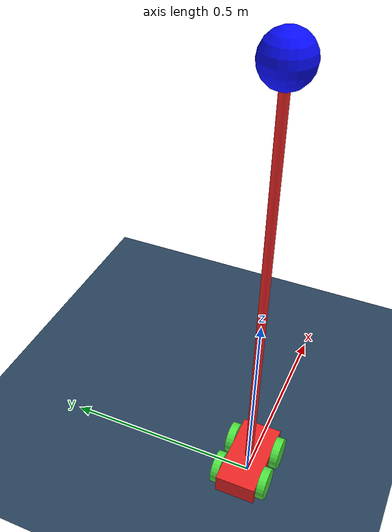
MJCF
<mujoco>
  <compiler inertiafromgeom="true" autolimits="true"/>

  <asset>
    <texture name="grid" type="2d" builtin="checker" width="512" height="512" rgb1=".1 .2 .3" rgb2=".2 .3 .4"/>
    <material name="grid" texture="grid" texrepeat="1 1" texuniform="true" reflectance=".2"/>
  </asset>

  <default>
    <joint damping="0.04" actuatorfrcrange="-5 5"/>

    <default class="chassis">
      <geom density="1426"/>
    </default>

    <default class="wheel">
      <geom type="cylinder" size="0.04 0.01" rgba="0.306 0.898 0.251 1" density="1426"/>
    </default>
  </default>

  <worldbody>
    <camera name="fixed" pos="0 -1.5 0.7" xyaxes="1 0 0 0 1 2"/>
    <geom type="plane" size="3 3 .01" material="grid"/>

    <body name="car" pos="0 0 0.04">
      <freejoint name="car_joint"/>

      <light name="top light" pos="0 0 2" mode="trackcom" diffuse=".4 .4 .4"/>

      <geom name="chasis" type="box" size="0.1 0.05 0.025" rgba="0.917 0.145 0.145 1" class="chassis"/>

      <!-- The physical structure of the wheels and pole  -->
      <body name="right_front_wheel" pos="0.05 -0.06 0" zaxis="0 1 0">
        <joint name="right_front"/>
        <geom class="wheel"/>
      </body>
      <body name="left_front_wheel" pos="0.05 0.06 0" zaxis="0 1 0">
        <joint name="left_front"/>
        <geom class="wheel"/>
      </body>
      <body name="right_rear_wheel" pos="-0.05 -0.06 0" zaxis="0 1 0">
        <joint name="right_rear"/>
        <geom class="wheel"/>
      </body>
      <body name="left_rear_wheel" pos="-0.05 0.06 0" zaxis="0 1 0">
        <joint name="left_rear"/>
        <geom class="wheel"/>
      </body>

      <site name="ds_left_site" type="box" size="0.005 0.005 0.005" rgba="0.184 0.596 0.847 1"
            pos="0.1 0.03 0" xyaxes="0.955 0.296 0 -0.296 0.955 0"/>
      <site name="ds_right_site" type="box" size="0.005 0.005 0.005" rgba="0.184 0.596 0.847 1"
            pos="0.1 -0.03 0" xyaxes="0.955 -0.296 0 0.296 0.955 0"/>

      <body name="pole_body" pos="0 0 0.025">
        <joint name="pole_joint" type="hinge" axis="0 1 0" limited="true" range="-57 57" />
        <geom name="pole" type="capsule" fromto="0 0 0 0 0 1" size="0.01"
              mass="0.2" rgba="1 0.157 0.157 1"/>
        <site name="tip" pos="0 0 1" size="0.05" rgba="0.0314 0.0471 1. 1" />
      </body>
    </body>
  </worldbody>

  <actuator>
    <motor name="motor_rf" joint="right_front" gear="1" ctrlrange="-15 15"/>
    <motor name="motor_lf" joint="left_front"  gear="1" ctrlrange="-15 15"/>
    <motor name="motor_rr" joint="right_rear"  gear="1" ctrlrange="-15 15"/>
    <motor name="motor_lr" joint="left_rear"   gear="1" ctrlrange="-15 15"/>
  </actuator>

  <sensor>
    <!-- Sensors -->
    <rangefinder name="ds_left" site="ds_left_site"/>
    <rangefinder name="ds_right" site="ds_right_site"/>
    <jointpos name="pole_angle_sensor" joint="pole_joint"/>
  </sensor>
</mujoco>
